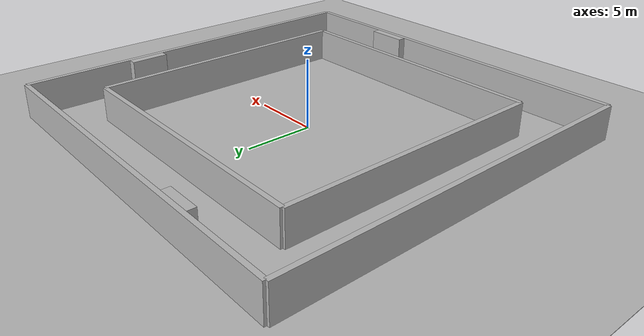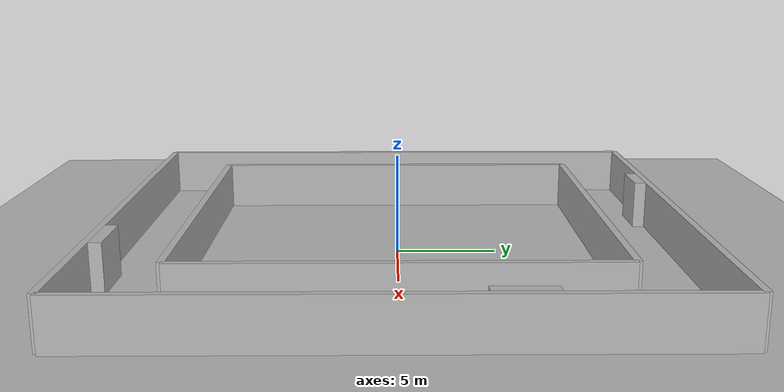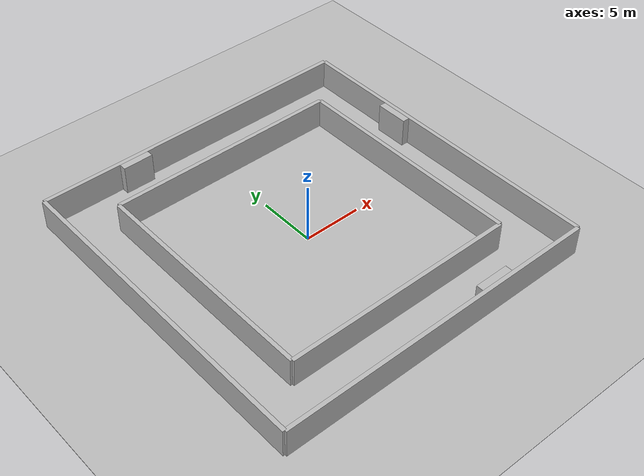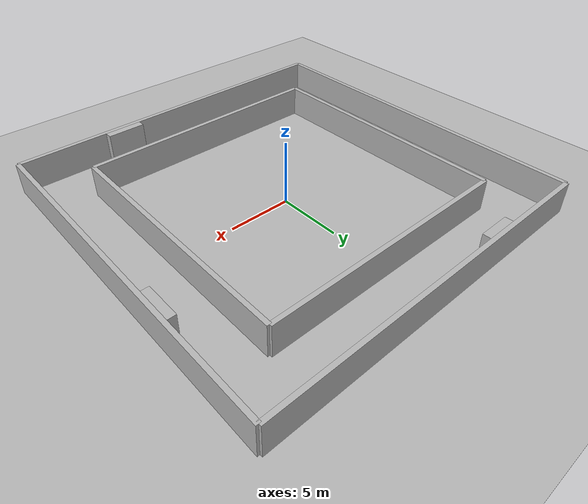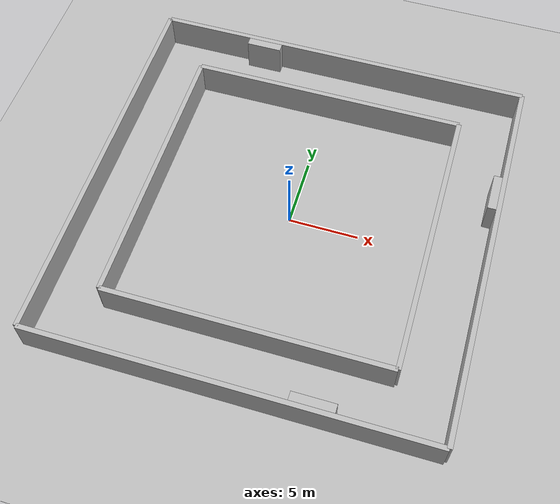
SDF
<?xml version="1.0"?>
<sdf version="1.6">
  <world name="square_building_10ft_hallway">
    <include>
      <uri>model://sun</uri>
    </include>

    <scene>
      <shadows>false</shadows>
    </scene>

    <gui fullscreen="0">
      <camera name="user_camera">
        <pose frame="">0 0 42 0 1.57 0</pose>
        <view_controller>orbit</view_controller>
        <projection_type>perspective</projection_type>
      </camera>
    </gui>

    <physics type="ode">
      <real_time_update_rate>1000.0</real_time_update_rate>
      <max_step_size>0.001</max_step_size>
      <real_time_factor>1</real_time_factor>
    </physics>

    <!-- Large floor -->
    <model name="floor">
      <static>true</static>
      <link name="floor_link">
        <collision name="floor_collision">
          <pose>0 0 0 0 0 0</pose>
          <geometry>
            <box><size>100 100 0.05</size></box>
          </geometry>
        </collision>
        <visual name="floor_visual">
          <pose>0 0 0 0 0 0</pose>
          <geometry>
            <box><size>100 100 0.05</size></box>
          </geometry>
          <material>
            <ambient>0.72 0.72 0.72 1</ambient>
            <diffuse>0.72 0.72 0.72 1</diffuse>
          </material>
        </visual>
      </link>
    </model>

    <model name="square_building">
      <static>true</static>
      <link name="walls">
        <!-- Outer square -->
        <collision name="outer_north_c"><pose>0 14.0 1.25 0 0 0</pose><geometry><box><size>28.0 0.35 2.5</size></box></geometry></collision>
        <visual    name="outer_north_v"><pose>0 14.0 1.25 0 0 0</pose><geometry><box><size>28.0 0.35 2.5</size></box></geometry></visual>
        <collision name="outer_south_c"><pose>0 -14.0 1.25 0 0 0</pose><geometry><box><size>28.0 0.35 2.5</size></box></geometry></collision>
        <visual    name="outer_south_v"><pose>0 -14.0 1.25 0 0 0</pose><geometry><box><size>28.0 0.35 2.5</size></box></geometry></visual>
        <collision name="outer_east_c"><pose>14.0 0 1.25 0 0 0</pose><geometry><box><size>0.35 28.0 2.5</size></box></geometry></collision>
        <visual    name="outer_east_v"><pose>14.0 0 1.25 0 0 0</pose><geometry><box><size>0.35 28.0 2.5</size></box></geometry></visual>
        <collision name="outer_west_c"><pose>-14.0 0 1.25 0 0 0</pose><geometry><box><size>0.35 28.0 2.5</size></box></geometry></collision>
        <visual    name="outer_west_v"><pose>-14.0 0 1.25 0 0 0</pose><geometry><box><size>0.35 28.0 2.5</size></box></geometry></visual>

        <!-- Inner square (12 ft nominal hallway) -->
        <collision name="inner_north_c"><pose>0 9.9924 1.25 0 0 0</pose><geometry><box><size>19.9848 0.35 2.5</size></box></geometry></collision>
        <visual    name="inner_north_v"><pose>0 9.9924 1.25 0 0 0</pose><geometry><box><size>19.9848 0.35 2.5</size></box></geometry></visual>
        <collision name="inner_south_c"><pose>0 -9.9924 1.25 0 0 0</pose><geometry><box><size>19.9848 0.35 2.5</size></box></geometry></collision>
        <visual    name="inner_south_v"><pose>0 -9.9924 1.25 0 0 0</pose><geometry><box><size>19.9848 0.35 2.5</size></box></geometry></visual>
        <collision name="inner_east_c"><pose>9.9924 0 1.25 0 0 0</pose><geometry><box><size>0.35 19.9848 2.5</size></box></geometry></collision>
        <visual    name="inner_east_v"><pose>9.9924 0 1.25 0 0 0</pose><geometry><box><size>0.35 19.9848 2.5</size></box></geometry></visual>
        <collision name="inner_west_c"><pose>-9.9924 0 1.25 0 0 0</pose><geometry><box><size>0.35 19.9848 2.5</size></box></geometry></collision>
        <visual    name="inner_west_v"><pose>-9.9924 0 1.25 0 0 0</pose><geometry><box><size>0.35 19.9848 2.5</size></box></geometry></visual>

        <!-- Wall-attached jut-outs (2 ft deep = 0.6096 m), making local hallway width 10 ft -->
        <!-- North wall jut-out (attached to outer wall inner face) -->
        <collision name="jut_north_c"><pose>-6.0 13.5202 1.25 0 0 0</pose><geometry><box><size>2.6 0.6096 2.5</size></box></geometry></collision>
        <visual    name="jut_north_v"><pose>-6.0 13.5202 1.25 0 0 0</pose><geometry><box><size>2.6 0.6096 2.5</size></box></geometry></visual>
        <!-- East wall jut-out -->
        <collision name="jut_east_c"><pose>13.5202 4.8 1.25 0 0 0</pose><geometry><box><size>0.6096 2.8 2.5</size></box></geometry></collision>
        <visual    name="jut_east_v"><pose>13.5202 4.8 1.25 0 0 0</pose><geometry><box><size>0.6096 2.8 2.5</size></box></geometry></visual>
        <!-- South wall jut-out -->
        <collision name="jut_south_c"><pose>5.5 -13.5202 1.25 0 0 0</pose><geometry><box><size>3.0 0.6096 2.5</size></box></geometry></collision>
        <visual    name="jut_south_v"><pose>5.5 -13.5202 1.25 0 0 0</pose><geometry><box><size>3.0 0.6096 2.5</size></box></geometry></visual>
      </link>
    </model>
  </world>
</sdf>
